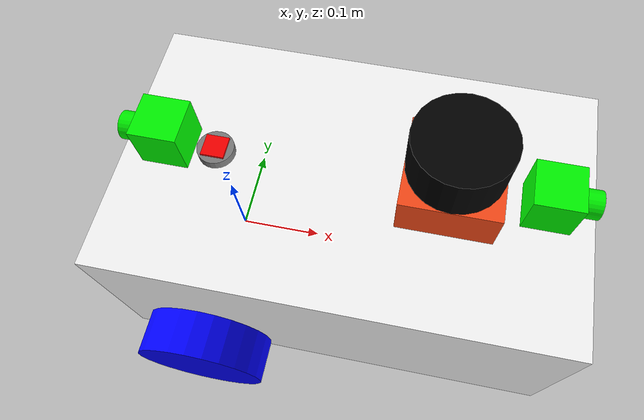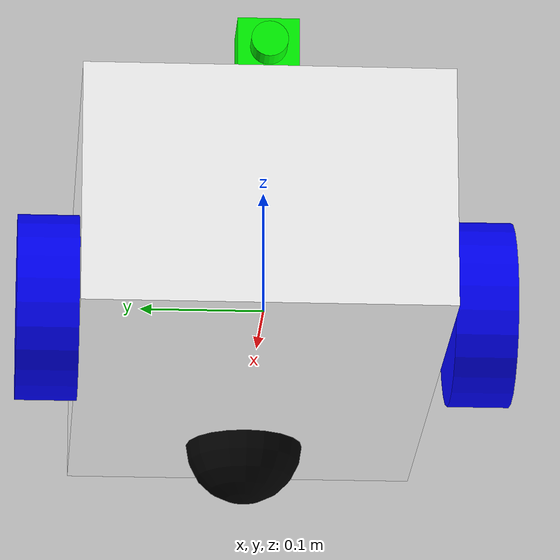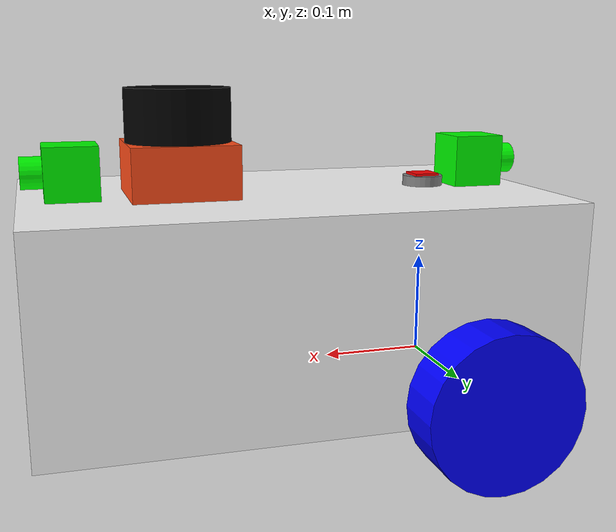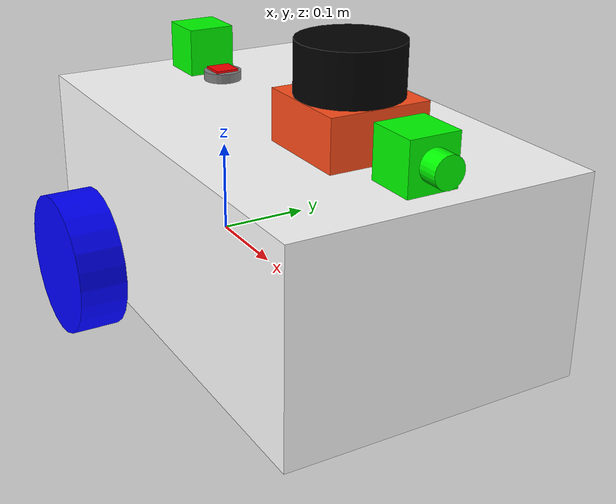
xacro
<?xml version="1.0"?>
<robot xmlns:xacro="http://www.ros.org/wiki/xacro"  name="pathfinder">

    <xacro:include filename="links.xacro" />
    <xacro:include filename="materials.xacro"/>
    <xacro:include filename="joints.xacro"/>
    <xacro:include filename="gazebo_materials.xacro"/>
    <xacro:include filename="gazebo_control.xacro"/>
    <xacro:include filename="gazebo_sensors.xacro"/>

</robot>

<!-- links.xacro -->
<robot xmlns:xacro="http://www.ros.org/wiki/xacro">
    <xacro:include filename="inertial_macros.xacro"/>

    <!-- =============== BASE LINK ================= -->
    <link name="base_link"></link>

    <!-- ============== CHASSIS LINK =============== -->
    <link name="chassis_link">
        <visual>
            <origin xyz="0.25 0 0.1" rpy="0 0 0"/>
            <geometry>
                <box size="0.5 0.3 0.2"/>
            </geometry>
            <material name="white"/>
        </visual>
        <collision>
        <origin xyz="0.25 0 0.1" rpy="0 0 0"/>
            <geometry>
                <box size="0.5 0.3 0.2"/>
            </geometry>
        </collision>
        <xacro:inertial_box mass="1" x="0.5" y="0.3" z="0.2">
            <origin xyz="0.25 0 0.1" rpy="0 0 0"/>
        </xacro:inertial_box>
    </link>

    <!-- ============= LEFT WHEEL LINK ============= -->
    <link name="left_wheel_link">
        <visual>
            <geometry>
                <cylinder radius="0.075" length="0.05"/>
            </geometry>
            <material name="blue"/>
        </visual>
        <collision>
            <geometry>
                <cylinder radius="0.075" length="0.05"/>
            </geometry>
        </collision>
        <xacro:inertial_cylinder mass="0.2" length="0.05" radius="0.075">
            <origin xyz="0 0 0" rpy="0 0 0"/>
        </xacro:inertial_cylinder>
    </link>

    <!-- ============ RIGHT WHEEL LINK ============= -->
    <link name="right_wheel_link">
        <visual>
            <geometry>
                <cylinder radius="0.075" length="0.05"/>
            </geometry>
            <material name="blue"/>
        </visual>
        <collision>
            <geometry>
                <cylinder radius="0.075" length="0.05"/>
            </geometry>
        </collision>
        <xacro:inertial_cylinder mass="0.2" length="0.05" radius="0.075">
            <origin xyz="0 0 0" rpy="0 0 0"/>
        </xacro:inertial_cylinder>
    </link>

    <!-- ========= FRONT CASTER WHEEL LINK ========= -->
    <link name="caster_wheel_link">
        <visual>
            <geometry>
                <sphere radius="0.05"/>
            </geometry>
            <material name="black"/>
        </visual>
        <collision>
            <geometry>
                <sphere radius="0.05"/>
            </geometry>
        </collision>
        <xacro:inertial_sphere mass="0.1" radius="0.05">
            <origin xyz="0 0 0" rpy="0 0 0"/>
        </xacro:inertial_sphere>
    </link>

    <!-- ========== CAMERA LINK AND FRAME ========== -->
    <link name="front_camera_link">
        <visual>
            <geometry>
                <box size="0.05 0.05 0.05"/>
            </geometry>
            <material name="green"/>
        </visual>
        <visual>
            <origin xyz="0.035 0 0" rpy="0 ${pi/2} 0"/>
            <geometry>
                <cylinder radius="0.015" length="0.02"/>
            </geometry>
            <material name="green"/>
        </visual>
        <collision>
            <geometry>
                <box size="0.05 0.05 0.05"/>
            </geometry>
        </collision>
        <collision>
            <origin xyz="0.035 0 0" rpy="0 ${pi/2} 0"/>
            <geometry>
                <cylinder radius="0.015" length="0.02"/>
            </geometry>
        </collision>
        <xacro:inertial_box mass="0.1" x="0.05" y="0.05" z="0.05">
            <origin xyz="0 0 0" rpy="0 0 0"/>
        </xacro:inertial_box>
    </link>

    <link name="front_camera_optical_frame"/>

    <!-- ======= REAR CAMERA LINK AND FRAME ========= -->
    <link name="rear_camera_link">
        <visual>
            <geometry>
                <box size="0.05 0.05 0.05"/>
            </geometry>
            <material name="green"/>
        </visual>
        <visual>
            <origin xyz="0.035 0 0" rpy="0 ${pi/2} 0"/>
            <geometry>
                <cylinder radius="0.015" length="0.02"/>
            </geometry>
            <material name="green"/>
        </visual>
        <collision>
            <geometry>
                <box size="0.05 0.05 0.05"/>
            </geometry>
        </collision>
        <collision>
            <origin xyz="0.035 0 0" rpy="0 ${pi/2} 0"/>
            <geometry>
                <cylinder radius="0.015" length="0.02"/>
            </geometry>
        </collision>
        <xacro:inertial_box mass="0.1" x="0.05" y="0.05" z="0.05">
            <origin xyz="0 0 0" rpy="0 0 0"/>
        </xacro:inertial_box>
    </link>

    <link name="rear_camera_optical_frame"/>

    <!-- ============ LIDAR BASE LINK ============== -->
    <link name="lidar_base_link">
        <visual>
            <material name="orange"/>
            <geometry>
                <box size="0.1 0.1 0.05"/>
            </geometry>
        </visual>
        <collision>
            <geometry>
                <box size="0.1 0.1 0.05"/>
            </geometry>
        </collision>
        <xacro:inertial_box mass="0.15" x="0.1" y="0.1" z="0.05">
            <origin xyz="0 0 0" rpy="0 0 0"/>
        </xacro:inertial_box>
    </link>

    <!-- =============== LIDAR LINK ================ -->
    <link name="lidar_link">
        <visual>
            <material name="black"/>
            <geometry>
                <cylinder radius="0.05" length="0.05"/>
            </geometry>
        </visual>
        <collision>
            <geometry>
                <cylinder radius="0.05" length="0.05"/>
            </geometry>
        </collision>
        <xacro:inertial_cylinder mass="0.15" radius="0.05" length="0.05">
            <origin xyz="0 0 0" rpy="0 0 0"/>
        </xacro:inertial_cylinder>
    </link>

    <!-- ================ IMU LINK ================== -->
    <link name="imu_link">
        <visual>
            <geometry>
                <box size="0.025 0.025 0.025"/>
            </geometry>
            <material name="red"/>
        </visual>
        <collision>
            <geometry>
                <box size="0.025 0.025 0.025"/>
            </geometry>
        </collision>
        <xacro:inertial_box mass="0.1" x="0.025" y="0.025" z="0.025">
            <origin xyz="0 0 0" rpy="0 0 0"/>
        </xacro:inertial_box>
    </link>
    <!-- ================ IMU LINK ================== -->
    <link name="gps_link">
        <visual>
            <geometry>
            <cylinder radius="0.02" length="0.02"/>
            </geometry>
            <material name="gray"/>
        </visual>
        <collision>
            <geometry>
                <cylinder radius="0.02" length="0.02"/>
            </geometry>
        </collision>
        <xacro:inertial_cylinder mass="0.05" length="0.02" radius="0.02">
            <origin xyz="0 0 0" rpy="0 0 0"/>
        </xacro:inertial_cylinder>
    </link>
</robot>

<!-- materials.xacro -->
<robot xmlns:xacro="http://www.ros.org/wiki/xacro">

    <!-- =============== MATERIALS ================= -->
    <material name="green">
        <color rgba="0 1 0 1"/>
    </material>
    <material name="blue">
        <color rgba="0 0 1 1"/>
    </material>
    <material name="red">
        <color rgba="1 0 0 1"/>
    </material>
    <material name="white">
        <color rgba="1 1 1 1"/>
    </material>
    <material name="black">
        <color rgba="0 0 0 1"/>
    </material>
    <material name="gray">
        <color rgba="0.5 0.5 0.5 1"/>
    </material>
    <material name="orange">
        <color rgba="1 0.3 0.1 1"/>
    </material>

</robot>

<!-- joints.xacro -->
<robot xmlns:xacro="http://www.ros.org/wiki/xacro">
    <!-- ============= CHASSIS JOINT =============== -->
    <joint name="chassis_joint" type="fixed">
        <parent link="base_link"/>
        <child link="chassis_link"/>
        <origin xyz="-0.1 0 -0.025" rpy="0 0 0"/>
    </joint>

    <!-- ============ LEFT WHEEL JOINT ============= -->
    <joint name="left_wheel_joint" type="continuous">
        <parent link="base_link"/>
        <child link="left_wheel_link"/>
        <origin xyz="0 0.175 0" rpy="-${pi/2} 0 0"/>
        <axis xyz="0 0 1"/>
        <limit effort="200" velocity="10.0"/>
    </joint>

    <!-- ========== RIGHT WHEEL JOINT ============== -->
    <joint name="right_wheel_joint" type="continuous">
        <parent link="base_link"/>
        <child link="right_wheel_link"/>
        <origin xyz="0 -0.175 0" rpy="${pi/2} 0 0"/>
        <axis xyz="0 0 -1"/>
        <limit effort="200" velocity="10.0"/>
    </joint>

    <!-- ======== FRONT CASTER WHEEL JOINT ========= -->
    <joint name="front_caster_joint" type="fixed">
        <parent link="chassis_link"/>
        <child link="caster_wheel_link"/>
        <origin xyz="0.4 0 0" rpy="0 0 0"/>
    </joint>

    <!-- ============== CAMERA JOINT =============== -->
    <joint name="front_camera_joint" type="fixed">
        <parent link="base_link"/>
        <child link="front_camera_link"/>
        <origin xyz="0.35 0 0.2" rpy="0 0 0"/>
    </joint>
    <joint name="rear_camera_joint" type="fixed">
        <parent link="base_link"/>
        <child link="rear_camera_link"/>
        <origin xyz="-0.05 0 0.2" rpy="0 0 ${pi}"/>
    </joint>

    <!-- ========== CAMERA OPTICAL JOINT =========== -->
    <joint name="front_camera_optical_joint" type="fixed">
        <parent link="front_camera_link"/>
        <child link="front_camera_optical_frame"/>
        <origin xyz="0 0 0" rpy="${-pi/2} 0 ${-pi/2}"/>
    </joint>
    <joint name="rear_camera_optical_joint" type="fixed">
        <parent link="rear_camera_link"/>
        <child link="rear_camera_optical_frame"/>
        <origin xyz="0 0 0" rpy="${-pi/2} 0 ${-pi/2}"/>
    </joint>

    <!-- ============== LiDAR JOINT ================ -->
    <joint name="lidar_base_joint" type="fixed">
        <parent link="base_link"/>
        <child link="lidar_base_link"/>
        <origin xyz="0.25 0 0.2" rpy="0 0 0"/>
    </joint>

    <!-- ============== LiDAR JOINT ================ -->
    <joint name="lidar_joint" type="fixed">
        <parent link="lidar_base_link"/>
        <child link="lidar_link"/>
        <origin xyz="0 0 0.05" rpy="0 0 0"/>
    </joint>

    <!-- =============== IMU JOINT ================= -->
    <joint name="imu_joint" type="fixed">
        <parent link="base_link"/>
        <child link="imu_link"/>
        <origin xyz="0 0 0.175" rpy="0 0 0"/>
    </joint>

    <!-- ============== GPS JOINT ================== -->
    <joint name="gps_joint" type="fixed">
        <parent link="base_link"/>
        <child link="gps_link"/>
        <origin xyz="0 0 0.175" rpy="0 0 0"/>
    </joint>

</robot>
